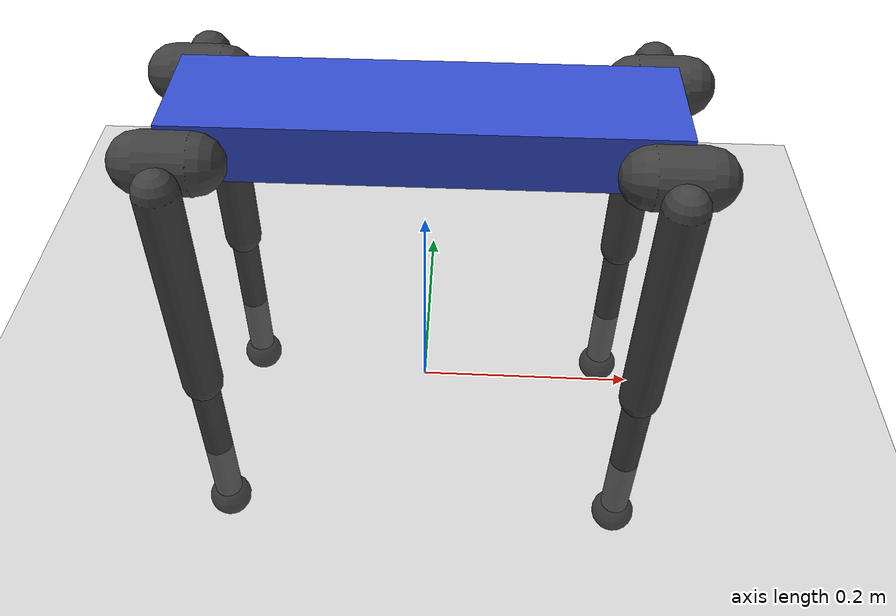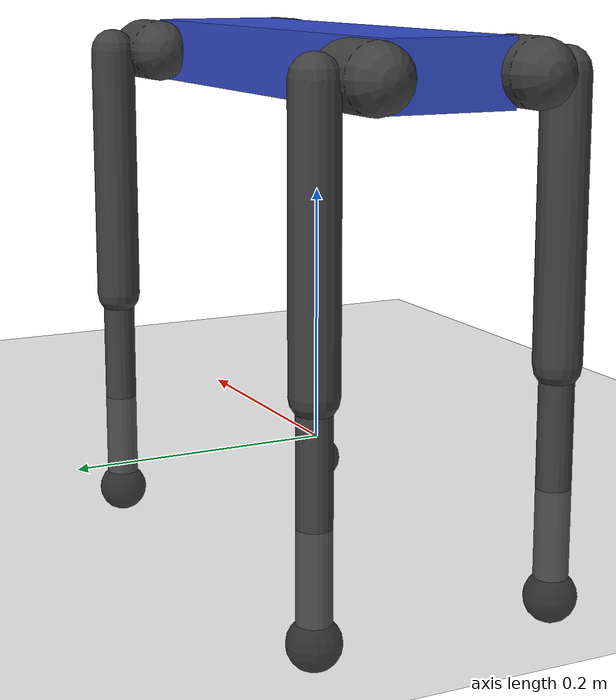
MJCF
<?xml version="1.0" encoding="utf-8"?>
<mujoco model="mini_cheetah">
  <compiler angle="radian" autolimits="true"/>

  <option timestep="0.002" gravity="0 0 -9.81" iterations="50" solver="Newton" cone="elliptic"/>

  <visual>
    <headlight ambient="0.5 0.5 0.5" diffuse="0.8 0.8 0.8" specular="0.1 0.1 0.1"/>
    <map force="0.1" zfar="30"/>
    <quality shadowsize="2048"/>
  </visual>

  <asset>
    <texture type="skybox" builtin="gradient" rgb1="0.4 0.6 0.8" rgb2="0.05 0.05 0.2" width="100" height="100"/>
    <texture name="floor_tex" type="2d" builtin="checker" rgb1="0.6 0.6 0.6" rgb2="0.4 0.4 0.4" width="300" height="300"/>
    <material name="floor_mat" texture="floor_tex" texrepeat="10 10" specular="0.5" shininess="0.3" reflectance="0.1"/>
    <material name="body_mat" rgba="0.2 0.3 0.8 1" specular="0.5" shininess="0.8"/>
    <material name="leg_mat" rgba="0.25 0.25 0.25 1" specular="0.3" shininess="0.5"/>
    <material name="foot_mat" rgba="0.1 0.1 0.1 1" specular="0.2" shininess="0.3"/>
  </asset>

  <default>
    <joint limited="true" armature="0.01" damping="0.1"/>
    <geom condim="6" friction="0.8 0.02 0.01" margin="0.001"/>
    <motor ctrllimited="true" ctrlrange="-17.0 17.0"/>
  </default>

  <worldbody>
    <light name="top" pos="0 0 3" dir="0 0 -1" directional="true" diffuse="0.8 0.8 0.8" specular="0.2 0.2 0.2"/>
    <light name="front" pos="2 -2 2" dir="-1 1 -1" diffuse="0.3 0.3 0.3"/>
    <geom name="floor" type="plane" size="50 50 0.1" material="floor_mat" condim="6" friction="1.0 0.005 0.0001"/>

    <!-- Robot body -->
    <body name="base" pos="0 0 0.300">
      <freejoint name="root"/>
      <inertial pos="0 0 0" mass="6.0" diaginertia="0.05 0.15 0.15"/>
      <geom name="body_box" type="box" size="0.2000 0.0500 0.0250" material="body_mat" contype="0" conaffinity="0"/>
      <site name="imu_site" pos="0 0 0" size="0.01"/>

      <!-- FR leg -->
      <body name="FR_hip" pos="0.1900 0.0620 0">
        <inertial pos="0 0 0" mass="0.54" diaginertia="0.001 0.001 0.001"/>
        <joint name="FR_hip_abduct" axis="1 0 0" range="-0.523 0.523" damping="0.5" armature="0.01"/>
        <geom name="FR_hip_geom" type="capsule" size="0.025 0.02" quat="0.707 0 0.707 0" material="leg_mat" contype="0" conaffinity="0"/>

        <body name="FR_thigh" pos="0 0.0350 0">
          <inertial pos="0 0 -0.1045" mass="0.634" diaginertia="0.002 0.002 0.0003"/>
          <joint name="FR_hip_rotate" axis="0 1 0" range="-1.047 1.047" damping="0.5" armature="0.01"/>
          <geom name="FR_thigh_geom" type="capsule" fromto="0 0 0 0 0 -0.2090" size="0.018" material="leg_mat" contype="0" conaffinity="0"/>

          <body name="FR_shin" pos="0 0 -0.2090">
            <inertial pos="0 0 -0.0875" mass="0.280" diaginertia="0.001 0.001 0.00005"/>
            <joint name="FR_knee" axis="0 1 0" range="-2.697 -0.524" damping="0.5" armature="0.01"/>
            <geom name="FR_shin_geom" type="capsule" fromto="0 0 0 0 0 -0.1750" size="0.013" material="leg_mat" contype="0" conaffinity="0"/>

            <body name="FR_foot" pos="0 0 -0.1750">
              <inertial pos="0 0 0" mass="0.06" diaginertia="0.00001 0.00001 0.00001"/>
              <geom name="FR_foot_geom" type="sphere" size="0.0200" material="foot_mat" condim="6" friction="1.5 0.005 0.0001" solimp="0.9 0.95 0.001" solref="0.02 1"/>
              <site name="FR_foot_site" pos="0 0 0" size="0.01"/>
            </body>
          </body>
        </body>
      </body>

      <!-- FL leg -->
      <body name="FL_hip" pos="0.1900 -0.0620 0">
        <inertial pos="0 0 0" mass="0.54" diaginertia="0.001 0.001 0.001"/>
        <joint name="FL_hip_abduct" axis="1 0 0" range="-0.523 0.523" damping="0.5" armature="0.01"/>
        <geom name="FL_hip_geom" type="capsule" size="0.025 0.02" quat="0.707 0 0.707 0" material="leg_mat" contype="0" conaffinity="0"/>

        <body name="FL_thigh" pos="0 -0.0350 0">
          <inertial pos="0 0 -0.1045" mass="0.634" diaginertia="0.002 0.002 0.0003"/>
          <joint name="FL_hip_rotate" axis="0 1 0" range="-1.047 1.047" damping="0.5" armature="0.01"/>
          <geom name="FL_thigh_geom" type="capsule" fromto="0 0 0 0 0 -0.2090" size="0.018" material="leg_mat" contype="0" conaffinity="0"/>

          <body name="FL_shin" pos="0 0 -0.2090">
            <inertial pos="0 0 -0.0875" mass="0.280" diaginertia="0.001 0.001 0.00005"/>
            <joint name="FL_knee" axis="0 1 0" range="-2.697 -0.524" damping="0.5" armature="0.01"/>
            <geom name="FL_shin_geom" type="capsule" fromto="0 0 0 0 0 -0.1750" size="0.013" material="leg_mat" contype="0" conaffinity="0"/>

            <body name="FL_foot" pos="0 0 -0.1750">
              <inertial pos="0 0 0" mass="0.06" diaginertia="0.00001 0.00001 0.00001"/>
              <geom name="FL_foot_geom" type="sphere" size="0.0200" material="foot_mat" condim="6" friction="1.5 0.005 0.0001" solimp="0.9 0.95 0.001" solref="0.02 1"/>
              <site name="FL_foot_site" pos="0 0 0" size="0.01"/>
            </body>
          </body>
        </body>
      </body>

      <!-- RR leg -->
      <body name="RR_hip" pos="-0.1900 0.0620 0">
        <inertial pos="0 0 0" mass="0.54" diaginertia="0.001 0.001 0.001"/>
        <joint name="RR_hip_abduct" axis="1 0 0" range="-0.523 0.523" damping="0.5" armature="0.01"/>
        <geom name="RR_hip_geom" type="capsule" size="0.025 0.02" quat="0.707 0 0.707 0" material="leg_mat" contype="0" conaffinity="0"/>

        <body name="RR_thigh" pos="0 0.0350 0">
          <inertial pos="0 0 -0.1045" mass="0.634" diaginertia="0.002 0.002 0.0003"/>
          <joint name="RR_hip_rotate" axis="0 1 0" range="-1.047 1.047" damping="0.5" armature="0.01"/>
          <geom name="RR_thigh_geom" type="capsule" fromto="0 0 0 0 0 -0.2090" size="0.018" material="leg_mat" contype="0" conaffinity="0"/>

          <body name="RR_shin" pos="0 0 -0.2090">
            <inertial pos="0 0 -0.0875" mass="0.280" diaginertia="0.001 0.001 0.00005"/>
            <joint name="RR_knee" axis="0 1 0" range="-2.697 -0.524" damping="0.5" armature="0.01"/>
            <geom name="RR_shin_geom" type="capsule" fromto="0 0 0 0 0 -0.1750" size="0.013" material="leg_mat" contype="0" conaffinity="0"/>

            <body name="RR_foot" pos="0 0 -0.1750">
              <inertial pos="0 0 0" mass="0.06" diaginertia="0.00001 0.00001 0.00001"/>
              <geom name="RR_foot_geom" type="sphere" size="0.0200" material="foot_mat" condim="6" friction="1.5 0.005 0.0001" solimp="0.9 0.95 0.001" solref="0.02 1"/>
              <site name="RR_foot_site" pos="0 0 0" size="0.01"/>
            </body>
          </body>
        </body>
      </body>

      <!-- RL leg -->
      <body name="RL_hip" pos="-0.1900 -0.0620 0">
        <inertial pos="0 0 0" mass="0.54" diaginertia="0.001 0.001 0.001"/>
        <joint name="RL_hip_abduct" axis="1 0 0" range="-0.523 0.523" damping="0.5" armature="0.01"/>
        <geom name="RL_hip_geom" type="capsule" size="0.025 0.02" quat="0.707 0 0.707 0" material="leg_mat" contype="0" conaffinity="0"/>

        <body name="RL_thigh" pos="0 -0.0350 0">
          <inertial pos="0 0 -0.1045" mass="0.634" diaginertia="0.002 0.002 0.0003"/>
          <joint name="RL_hip_rotate" axis="0 1 0" range="-1.047 1.047" damping="0.5" armature="0.01"/>
          <geom name="RL_thigh_geom" type="capsule" fromto="0 0 0 0 0 -0.2090" size="0.018" material="leg_mat" contype="0" conaffinity="0"/>

          <body name="RL_shin" pos="0 0 -0.2090">
            <inertial pos="0 0 -0.0875" mass="0.280" diaginertia="0.001 0.001 0.00005"/>
            <joint name="RL_knee" axis="0 1 0" range="-2.697 -0.524" damping="0.5" armature="0.01"/>
            <geom name="RL_shin_geom" type="capsule" fromto="0 0 0 0 0 -0.1750" size="0.013" material="leg_mat" contype="0" conaffinity="0"/>

            <body name="RL_foot" pos="0 0 -0.1750">
              <inertial pos="0 0 0" mass="0.06" diaginertia="0.00001 0.00001 0.00001"/>
              <geom name="RL_foot_geom" type="sphere" size="0.0200" material="foot_mat" condim="6" friction="1.5 0.005 0.0001" solimp="0.9 0.95 0.001" solref="0.02 1"/>
              <site name="RL_foot_site" pos="0 0 0" size="0.01"/>
            </body>
          </body>
        </body>
      </body>
    </body>
  </worldbody>

  <actuator>
    <motor name="FR_hip_abduct_motor" joint="FR_hip_abduct" gear="1"/>
    <motor name="FR_hip_rotate_motor" joint="FR_hip_rotate" gear="1"/>
    <motor name="FR_knee_motor"       joint="FR_knee"        gear="1"/>
    <motor name="FL_hip_abduct_motor" joint="FL_hip_abduct" gear="1"/>
    <motor name="FL_hip_rotate_motor" joint="FL_hip_rotate" gear="1"/>
    <motor name="FL_knee_motor"       joint="FL_knee"        gear="1"/>
    <motor name="RR_hip_abduct_motor" joint="RR_hip_abduct" gear="1"/>
    <motor name="RR_hip_rotate_motor" joint="RR_hip_rotate" gear="1"/>
    <motor name="RR_knee_motor"       joint="RR_knee"        gear="1"/>
    <motor name="RL_hip_abduct_motor" joint="RL_hip_abduct" gear="1"/>
    <motor name="RL_hip_rotate_motor" joint="RL_hip_rotate" gear="1"/>
    <motor name="RL_knee_motor"       joint="RL_knee"        gear="1"/>
  </actuator>

  <sensor>
    <framelinvel name="base_linvel" objtype="site" objname="imu_site"/>
    <frameangvel name="base_angvel" objtype="site" objname="imu_site"/>
    <framequat name="base_quat" objtype="site" objname="imu_site"/>
    <accelerometer name="base_accel" site="imu_site"/>
    <gyro name="base_gyro" site="imu_site"/>
  </sensor>
</mujoco>
